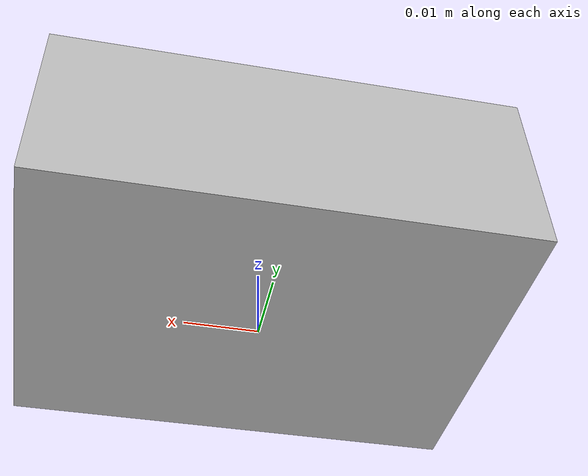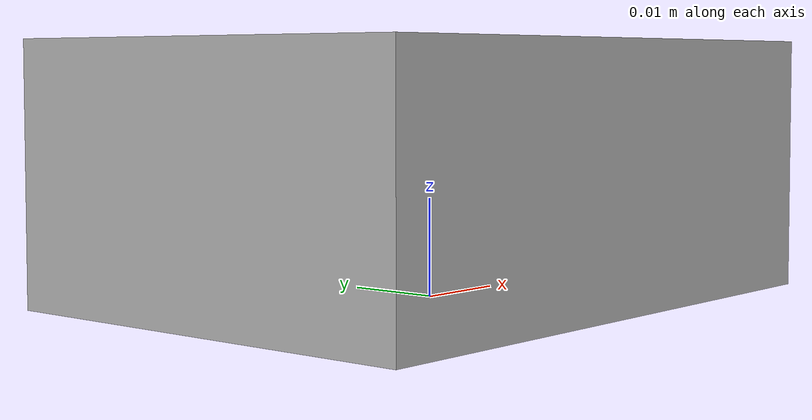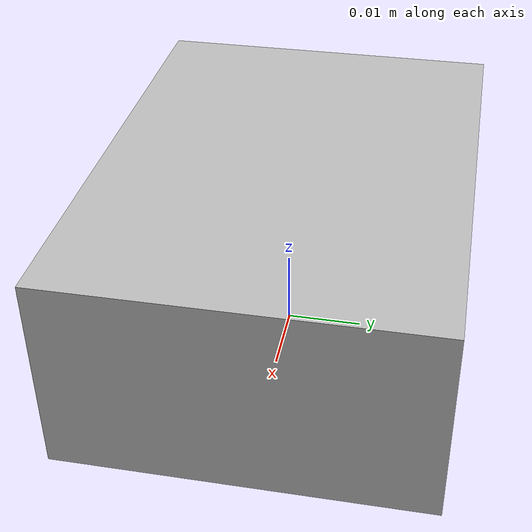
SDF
<?xml version="1.0" ?>
<sdf version="1.4">
  <model name="utl5_small">
    <static>true</static>
    <link name="link">
      <inertial>
        <mass>0.2</mass>
      </inertial>
      <collision name="collision">
        <pose>0.0 0.0 0.0 0 0.0 0.0</pose>
        <geometry>
          <mesh>
            <uri>model://utl5_small/meshes/utl5_small.dae</uri>
          </mesh>
        </geometry>
      </collision>
      <visual name="visual">
        <pose>0.0 0.0 0.0 0 0.0 0.0</pose>
        <geometry>
          <mesh>
            <uri>model://utl5_small/meshes/utl5_small.dae</uri>
          </mesh>
        </geometry>
      </visual>
    </link>
  </model>
</sdf>
